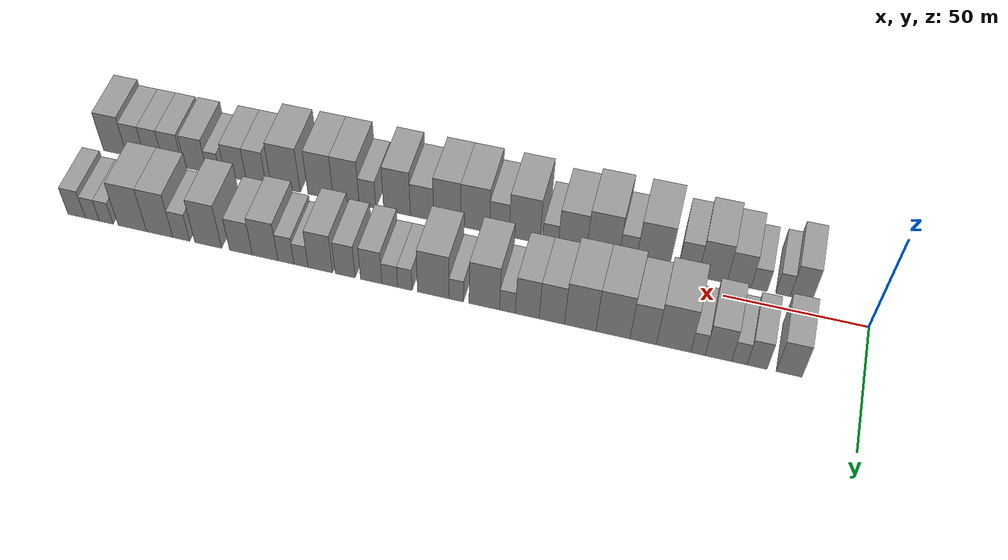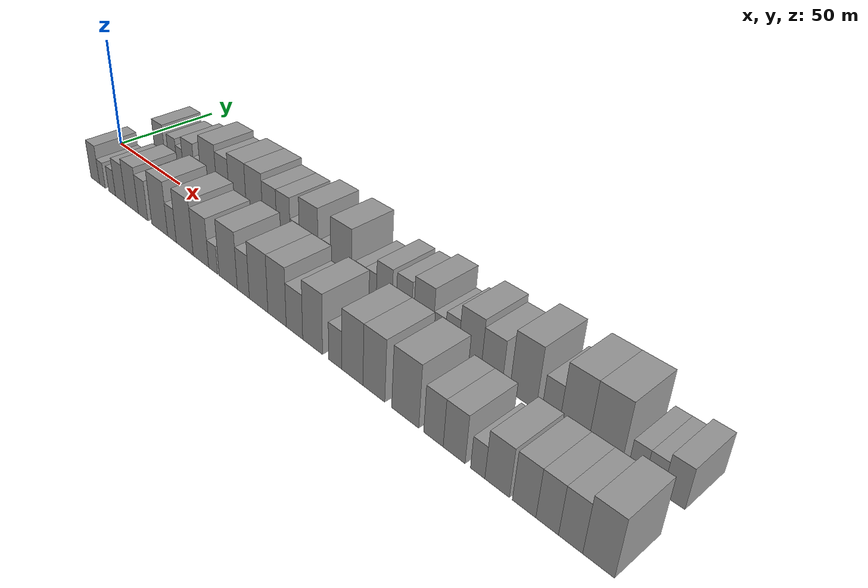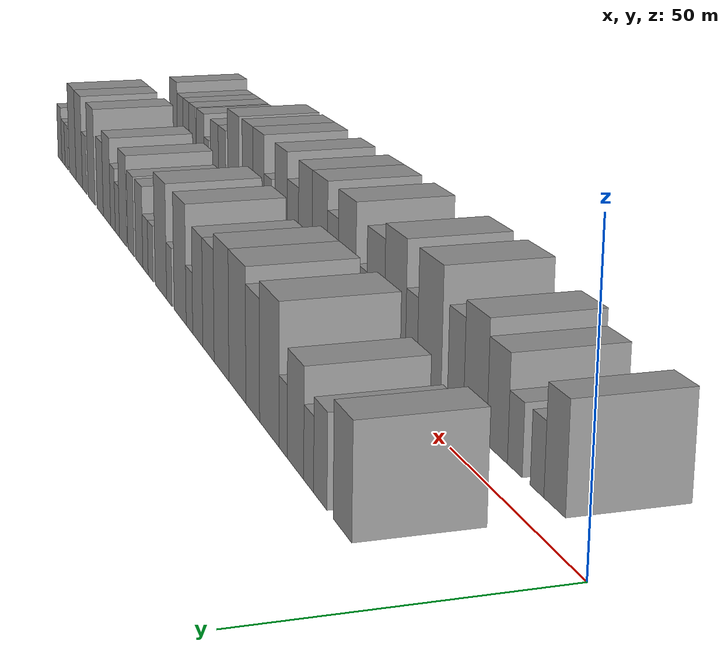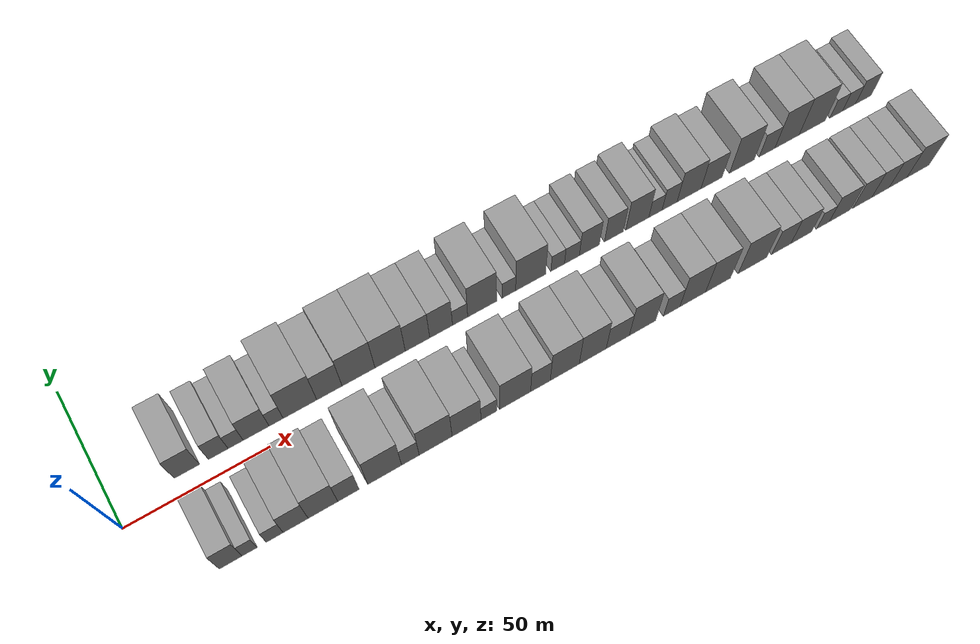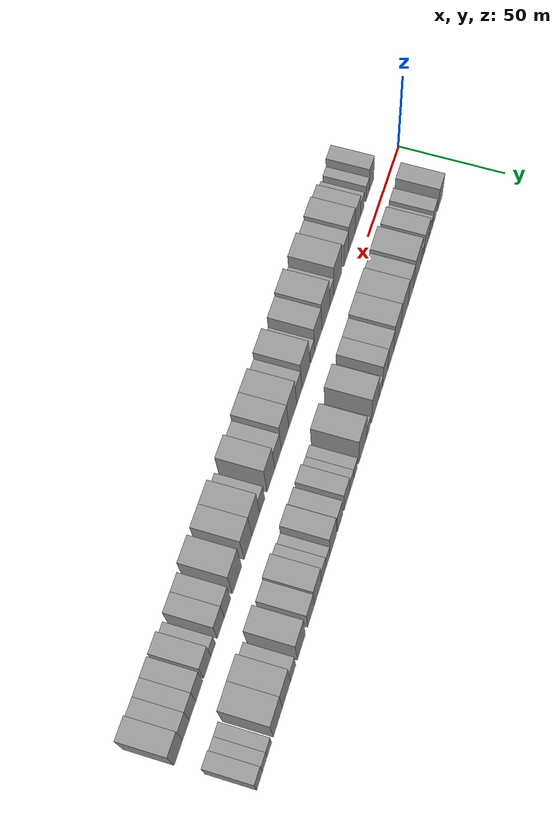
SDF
<sdf version="1.6">
 <world name="default">
  <scene>
   <sky><clouds><speed>12</speed></clouds></sky>
   <ambient>0.4 0.4 0.4 1</ambient>
   <background>0.7 0.7 0.7 1</background>
   <shadows>1</shadows>
  </scene>
  <gravity>0 0 -9.8066</gravity>
  <magnetic_field>6e-06 2.3e-05 -4.2e-05</magnetic_field>
  <physics default="0" name="default_physics" type="ode">
   <ode>
    <solver>
     <type>quick</type>
     <iters>10</iters>
     <sor>1.0</sor>
     <use_dynamic_moi_rescaling>0</use_dynamic_moi_rescaling>
    </solver>
    <constraints>
     <cfm>0</cfm>
     <erp>0.2</erp>
     <contact_max_correcting_vel>100</contact_max_correcting_vel>
     <contact_surface_layer>0.001</contact_surface_layer>
    </constraints>
   </ode>
   <max_step_size>0.004</max_step_size>
   <real_time_factor>1</real_time_factor>
   <real_time_update_rate>250</real_time_update_rate>
  </physics>
  <light name="sun" type="directional">
   <pose>0 0 10 0 0 0</pose>
   <diffuse>0.8 0.8 0.8 1</diffuse>
   <specular>0.2 0.2 0.2 1</specular>
   <attenuation>
    <range>1000</range>
    <constant>0.9</constant>
    <linear>0.01</linear>
    <quadratic>0.001</quadratic>
   </attenuation>
   <direction>-0.5 0.1 -0.9</direction>
  </light>
  <model name="building_1">
   <static>1</static>
   <pose>24.3250 16.0000 0 0.000000 0.000000 1.570796</pose>
   <link name="link">
    <pose>0 0 9.00 0 0 0</pose>
    <collision name="collision"><geometry><box><size>20.0000 8.6500 18.0000</size></box></geometry></collision>
    <visual name="visual">
     <cast_shadows>0</cast_shadows>
     <geometry><box><size>20.0000 8.6500 18.0000</size></box></geometry>
     <material>
      <script>
       <uri>model://grey_wall/materials/scripts</uri>
       <uri>model://grey_wall/materials/textures</uri>
       <name>vrc/grey_wall</name>
      </script>
     </material>
    </visual>
   </link>
  </model>
  <model name="building_2">
   <static>1</static>
   <pose>35.0314 16.0000 0 0.000000 0.000000 1.570796</pose>
   <link name="link">
    <pose>0 0 7.50 0 0 0</pose>
    <collision name="collision"><geometry><box><size>20.0000 6.7627 15.0000</size></box></geometry></collision>
    <visual name="visual">
     <cast_shadows>0</cast_shadows>
     <geometry><box><size>20.0000 6.7627 15.0000</size></box></geometry>
     <material>
      <script>
       <uri>model://grey_wall/materials/scripts</uri>
       <uri>model://grey_wall/materials/textures</uri>
       <name>vrc/grey_wall</name>
      </script>
     </material>
    </visual>
   </link>
  </model>
  <model name="building_3">
   <static>1</static>
   <pose>41.0030 16.0000 0 0.000000 0.000000 1.570796</pose>
   <link name="link">
    <pose>0 0 6.00 0 0 0</pose>
    <collision name="collision"><geometry><box><size>20.0000 5.1804 12.0000</size></box></geometry></collision>
    <visual name="visual">
     <cast_shadows>0</cast_shadows>
     <geometry><box><size>20.0000 5.1804 12.0000</size></box></geometry>
     <material>
      <script>
       <uri>model://grey_wall/materials/scripts</uri>
       <uri>model://grey_wall/materials/textures</uri>
       <name>vrc/grey_wall</name>
      </script>
     </material>
    </visual>
   </link>
  </model>
  <model name="building_4">
   <static>1</static>
   <pose>48.0902 16.0000 0 0.000000 0.000000 1.570796</pose>
   <link name="link">
    <pose>0 0 9.00 0 0 0</pose>
    <collision name="collision"><geometry><box><size>20.0000 8.9939 18.0000</size></box></geometry></collision>
    <visual name="visual">
     <cast_shadows>0</cast_shadows>
     <geometry><box><size>20.0000 8.9939 18.0000</size></box></geometry>
     <material>
      <script>
       <uri>model://grey_wall/materials/scripts</uri>
       <uri>model://grey_wall/materials/textures</uri>
       <name>vrc/grey_wall</name>
      </script>
     </material>
    </visual>
   </link>
  </model>
  <model name="building_5">
   <static>1</static>
   <pose>55.0457 16.0000 0 0.000000 0.000000 1.570796</pose>
   <link name="link">
    <pose>0 0 6.00 0 0 0</pose>
    <collision name="collision"><geometry><box><size>20.0000 4.9170 12.0000</size></box></geometry></collision>
    <visual name="visual">
     <cast_shadows>0</cast_shadows>
     <geometry><box><size>20.0000 4.9170 12.0000</size></box></geometry>
     <material>
      <script>
       <uri>model://grey_wall/materials/scripts</uri>
       <uri>model://grey_wall/materials/textures</uri>
       <name>vrc/grey_wall</name>
      </script>
     </material>
    </visual>
   </link>
  </model>
  <model name="building_6">
   <static>1</static>
   <pose>63.4127 16.0000 0 0.000000 0.000000 1.570796</pose>
   <link name="link">
    <pose>0 0 12.00 0 0 0</pose>
    <collision name="collision"><geometry><box><size>20.0000 11.8170 24.0000</size></box></geometry></collision>
    <visual name="visual">
     <cast_shadows>0</cast_shadows>
     <geometry><box><size>20.0000 11.8170 24.0000</size></box></geometry>
     <material>
      <script>
       <uri>model://grey_wall/materials/scripts</uri>
       <uri>model://grey_wall/materials/textures</uri>
       <name>vrc/grey_wall</name>
      </script>
     </material>
    </visual>
   </link>
  </model>
  <model name="building_7">
   <static>1</static>
   <pose>73.8226 16.0000 0 0.000000 0.000000 1.570796</pose>
   <link name="link">
    <pose>0 0 10.50 0 0 0</pose>
    <collision name="collision"><geometry><box><size>20.0000 9.0029 21.0000</size></box></geometry></collision>
    <visual name="visual">
     <cast_shadows>0</cast_shadows>
     <geometry><box><size>20.0000 9.0029 21.0000</size></box></geometry>
     <material>
      <script>
       <uri>model://grey_wall/materials/scripts</uri>
       <uri>model://grey_wall/materials/textures</uri>
       <name>vrc/grey_wall</name>
      </script>
     </material>
    </visual>
   </link>
  </model>
  <model name="building_8">
   <static>1</static>
   <pose>84.2331 16.0000 0 0.000000 0.000000 1.570796</pose>
   <link name="link">
    <pose>0 0 12.00 0 0 0</pose>
    <collision name="collision"><geometry><box><size>20.0000 11.8181 24.0000</size></box></geometry></collision>
    <visual name="visual">
     <cast_shadows>0</cast_shadows>
     <geometry><box><size>20.0000 11.8181 24.0000</size></box></geometry>
     <material>
      <script>
       <uri>model://grey_wall/materials/scripts</uri>
       <uri>model://grey_wall/materials/textures</uri>
       <name>vrc/grey_wall</name>
      </script>
     </material>
    </visual>
   </link>
  </model>
  <model name="building_9">
   <static>1</static>
   <pose>95.6553 16.0000 0 0.000000 0.000000 1.570796</pose>
   <link name="link">
    <pose>0 0 12.00 0 0 0</pose>
    <collision name="collision"><geometry><box><size>20.0000 11.0262 24.0000</size></box></geometry></collision>
    <visual name="visual">
     <cast_shadows>0</cast_shadows>
     <geometry><box><size>20.0000 11.0262 24.0000</size></box></geometry>
     <material>
      <script>
       <uri>model://grey_wall/materials/scripts</uri>
       <uri>model://grey_wall/materials/textures</uri>
       <name>vrc/grey_wall</name>
      </script>
     </material>
    </visual>
   </link>
  </model>
  <model name="building_10">
   <static>1</static>
   <pose>105.6453 16.0000 0 0.000000 0.000000 1.570796</pose>
   <link name="link">
    <pose>0 0 10.50 0 0 0</pose>
    <collision name="collision"><geometry><box><size>20.0000 8.9538 21.0000</size></box></geometry></collision>
    <visual name="visual">
     <cast_shadows>0</cast_shadows>
     <geometry><box><size>20.0000 8.9538 21.0000</size></box></geometry>
     <material>
      <script>
       <uri>model://grey_wall/materials/scripts</uri>
       <uri>model://grey_wall/materials/textures</uri>
       <name>vrc/grey_wall</name>
      </script>
     </material>
    </visual>
   </link>
  </model>
  <model name="building_11">
   <static>1</static>
   <pose>114.3424 16.0000 0 0.000000 0.000000 1.570796</pose>
   <link name="link">
    <pose>0 0 10.50 0 0 0</pose>
    <collision name="collision"><geometry><box><size>20.0000 8.4403 21.0000</size></box></geometry></collision>
    <visual name="visual">
     <cast_shadows>0</cast_shadows>
     <geometry><box><size>20.0000 8.4403 21.0000</size></box></geometry>
     <material>
      <script>
       <uri>model://grey_wall/materials/scripts</uri>
       <uri>model://grey_wall/materials/textures</uri>
       <name>vrc/grey_wall</name>
      </script>
     </material>
    </visual>
   </link>
  </model>
  <model name="building_12">
   <static>1</static>
   <pose>121.3805 16.0000 0 0.000000 0.000000 1.570796</pose>
   <link name="link">
    <pose>0 0 6.00 0 0 0</pose>
    <collision name="collision"><geometry><box><size>20.0000 5.6361 12.0000</size></box></geometry></collision>
    <visual name="visual">
     <cast_shadows>0</cast_shadows>
     <geometry><box><size>20.0000 5.6361 12.0000</size></box></geometry>
     <material>
      <script>
       <uri>model://grey_wall/materials/scripts</uri>
       <uri>model://grey_wall/materials/textures</uri>
       <name>vrc/grey_wall</name>
      </script>
     </material>
    </visual>
   </link>
  </model>
  <model name="building_13">
   <static>1</static>
   <pose>129.6398 16.0000 0 0.000000 0.000000 1.570796</pose>
   <link name="link">
    <pose>0 0 12.00 0 0 0</pose>
    <collision name="collision"><geometry><box><size>20.0000 10.8824 24.0000</size></box></geometry></collision>
    <visual name="visual">
     <cast_shadows>0</cast_shadows>
     <geometry><box><size>20.0000 10.8824 24.0000</size></box></geometry>
     <material>
      <script>
       <uri>model://grey_wall/materials/scripts</uri>
       <uri>model://grey_wall/materials/textures</uri>
       <name>vrc/grey_wall</name>
      </script>
     </material>
    </visual>
   </link>
  </model>
  <model name="building_14">
   <static>1</static>
   <pose>139.6663 16.0000 0 0.000000 0.000000 1.570796</pose>
   <link name="link">
    <pose>0 0 6.00 0 0 0</pose>
    <collision name="collision"><geometry><box><size>20.0000 5.1708 12.0000</size></box></geometry></collision>
    <visual name="visual">
     <cast_shadows>0</cast_shadows>
     <geometry><box><size>20.0000 5.1708 12.0000</size></box></geometry>
     <material>
      <script>
       <uri>model://grey_wall/materials/scripts</uri>
       <uri>model://grey_wall/materials/textures</uri>
       <name>vrc/grey_wall</name>
      </script>
     </material>
    </visual>
   </link>
  </model>
  <model name="building_15">
   <static>1</static>
   <pose>147.9795 16.0000 0 0.000000 0.000000 1.570796</pose>
   <link name="link">
    <pose>0 0 12.00 0 0 0</pose>
    <collision name="collision"><geometry><box><size>20.0000 11.4556 24.0000</size></box></geometry></collision>
    <visual name="visual">
     <cast_shadows>0</cast_shadows>
     <geometry><box><size>20.0000 11.4556 24.0000</size></box></geometry>
     <material>
      <script>
       <uri>model://grey_wall/materials/scripts</uri>
       <uri>model://grey_wall/materials/textures</uri>
       <name>vrc/grey_wall</name>
      </script>
     </material>
    </visual>
   </link>
  </model>
  <model name="building_16">
   <static>1</static>
   <pose>158.3453 16.0000 0 0.000000 0.000000 1.570796</pose>
   <link name="link">
    <pose>0 0 6.00 0 0 0</pose>
    <collision name="collision"><geometry><box><size>20.0000 5.2759 12.0000</size></box></geometry></collision>
    <visual name="visual">
     <cast_shadows>0</cast_shadows>
     <geometry><box><size>20.0000 5.2759 12.0000</size></box></geometry>
     <material>
      <script>
       <uri>model://grey_wall/materials/scripts</uri>
       <uri>model://grey_wall/materials/textures</uri>
       <name>vrc/grey_wall</name>
      </script>
     </material>
    </visual>
   </link>
  </model>
  <model name="building_17">
   <static>1</static>
   <pose>163.8583 16.0000 0 0.000000 0.000000 1.570796</pose>
   <link name="link">
    <pose>0 0 6.00 0 0 0</pose>
    <collision name="collision"><geometry><box><size>20.0000 5.7501 12.0000</size></box></geometry></collision>
    <visual name="visual">
     <cast_shadows>0</cast_shadows>
     <geometry><box><size>20.0000 5.7501 12.0000</size></box></geometry>
     <material>
      <script>
       <uri>model://grey_wall/materials/scripts</uri>
       <uri>model://grey_wall/materials/textures</uri>
       <name>vrc/grey_wall</name>
      </script>
     </material>
    </visual>
   </link>
  </model>
  <model name="building_18">
   <static>1</static>
   <pose>170.6636 16.0000 0 0.000000 0.000000 1.570796</pose>
   <link name="link">
    <pose>0 0 9.00 0 0 0</pose>
    <collision name="collision"><geometry><box><size>20.0000 7.8605 18.0000</size></box></geometry></collision>
    <visual name="visual">
     <cast_shadows>0</cast_shadows>
     <geometry><box><size>20.0000 7.8605 18.0000</size></box></geometry>
     <material>
      <script>
       <uri>model://grey_wall/materials/scripts</uri>
       <uri>model://grey_wall/materials/textures</uri>
       <name>vrc/grey_wall</name>
      </script>
     </material>
    </visual>
   </link>
  </model>
  <model name="building_19">
   <static>1</static>
   <pose>180.2828 16.0000 0 0.000000 0.000000 1.570796</pose>
   <link name="link">
    <pose>0 0 9.00 0 0 0</pose>
    <collision name="collision"><geometry><box><size>20.0000 7.3778 18.0000</size></box></geometry></collision>
    <visual name="visual">
     <cast_shadows>0</cast_shadows>
     <geometry><box><size>20.0000 7.3778 18.0000</size></box></geometry>
     <material>
      <script>
       <uri>model://grey_wall/materials/scripts</uri>
       <uri>model://grey_wall/materials/textures</uri>
       <name>vrc/grey_wall</name>
      </script>
     </material>
    </visual>
   </link>
  </model>
  <model name="building_20">
   <static>1</static>
   <pose>189.5347 16.0000 0 0.000000 0.000000 1.570796</pose>
   <link name="link">
    <pose>0 0 10.50 0 0 0</pose>
    <collision name="collision"><geometry><box><size>20.0000 9.1259 21.0000</size></box></geometry></collision>
    <visual name="visual">
     <cast_shadows>0</cast_shadows>
     <geometry><box><size>20.0000 9.1259 21.0000</size></box></geometry>
     <material>
      <script>
       <uri>model://grey_wall/materials/scripts</uri>
       <uri>model://grey_wall/materials/textures</uri>
       <name>vrc/grey_wall</name>
      </script>
     </material>
    </visual>
   </link>
  </model>
  <model name="building_21">
   <static>1</static>
   <pose>196.7513 16.0000 0 0.000000 0.000000 1.570796</pose>
   <link name="link">
    <pose>0 0 6.00 0 0 0</pose>
    <collision name="collision"><geometry><box><size>20.0000 5.3074 12.0000</size></box></geometry></collision>
    <visual name="visual">
     <cast_shadows>0</cast_shadows>
     <geometry><box><size>20.0000 5.3074 12.0000</size></box></geometry>
     <material>
      <script>
       <uri>model://grey_wall/materials/scripts</uri>
       <uri>model://grey_wall/materials/textures</uri>
       <name>vrc/grey_wall</name>
      </script>
     </material>
    </visual>
   </link>
  </model>
  <model name="building_22">
   <static>1</static>
   <pose>202.4289 16.0000 0 0.000000 0.000000 1.570796</pose>
   <link name="link">
    <pose>0 0 7.50 0 0 0</pose>
    <collision name="collision"><geometry><box><size>20.0000 6.0478 15.0000</size></box></geometry></collision>
    <visual name="visual">
     <cast_shadows>0</cast_shadows>
     <geometry><box><size>20.0000 6.0478 15.0000</size></box></geometry>
     <material>
      <script>
       <uri>model://grey_wall/materials/scripts</uri>
       <uri>model://grey_wall/materials/textures</uri>
       <name>vrc/grey_wall</name>
      </script>
     </material>
    </visual>
   </link>
  </model>
  <model name="building_23">
   <static>1</static>
   <pose>210.3044 16.0000 0 0.000000 0.000000 1.570796</pose>
   <link name="link">
    <pose>0 0 10.50 0 0 0</pose>
    <collision name="collision"><geometry><box><size>20.0000 9.7033 21.0000</size></box></geometry></collision>
    <visual name="visual">
     <cast_shadows>0</cast_shadows>
     <geometry><box><size>20.0000 9.7033 21.0000</size></box></geometry>
     <material>
      <script>
       <uri>model://grey_wall/materials/scripts</uri>
       <uri>model://grey_wall/materials/textures</uri>
       <name>vrc/grey_wall</name>
      </script>
     </material>
    </visual>
   </link>
  </model>
  <model name="building_24">
   <static>1</static>
   <pose>219.4994 16.0000 0 0.000000 0.000000 1.570796</pose>
   <link name="link">
    <pose>0 0 9.00 0 0 0</pose>
    <collision name="collision"><geometry><box><size>20.0000 8.6868 18.0000</size></box></geometry></collision>
    <visual name="visual">
     <cast_shadows>0</cast_shadows>
     <geometry><box><size>20.0000 8.6868 18.0000</size></box></geometry>
     <material>
      <script>
       <uri>model://grey_wall/materials/scripts</uri>
       <uri>model://grey_wall/materials/textures</uri>
       <name>vrc/grey_wall</name>
      </script>
     </material>
    </visual>
   </link>
  </model>
  <model name="building_25">
   <static>1</static>
   <pose>231.9892 16.0000 0 0.000000 0.000000 1.570796</pose>
   <link name="link">
    <pose>0 0 12.00 0 0 0</pose>
    <collision name="collision"><geometry><box><size>20.0000 10.2928 24.0000</size></box></geometry></collision>
    <visual name="visual">
     <cast_shadows>0</cast_shadows>
     <geometry><box><size>20.0000 10.2928 24.0000</size></box></geometry>
     <material>
      <script>
       <uri>model://grey_wall/materials/scripts</uri>
       <uri>model://grey_wall/materials/textures</uri>
       <name>vrc/grey_wall</name>
      </script>
     </material>
    </visual>
   </link>
  </model>
  <model name="building_26">
   <static>1</static>
   <pose>242.4073 16.0000 0 0.000000 0.000000 1.570796</pose>
   <link name="link">
    <pose>0 0 7.50 0 0 0</pose>
    <collision name="collision"><geometry><box><size>20.0000 6.5432 15.0000</size></box></geometry></collision>
    <visual name="visual">
     <cast_shadows>0</cast_shadows>
     <geometry><box><size>20.0000 6.5432 15.0000</size></box></geometry>
     <material>
      <script>
       <uri>model://grey_wall/materials/scripts</uri>
       <uri>model://grey_wall/materials/textures</uri>
       <name>vrc/grey_wall</name>
      </script>
     </material>
    </visual>
   </link>
  </model>
  <model name="building_27">
   <static>1</static>
   <pose>250.7793 16.0000 0 0.000000 0.000000 1.570796</pose>
   <link name="link">
    <pose>0 0 12.00 0 0 0</pose>
    <collision name="collision"><geometry><box><size>20.0000 10.2008 24.0000</size></box></geometry></collision>
    <visual name="visual">
     <cast_shadows>0</cast_shadows>
     <geometry><box><size>20.0000 10.2008 24.0000</size></box></geometry>
     <material>
      <script>
       <uri>model://grey_wall/materials/scripts</uri>
       <uri>model://grey_wall/materials/textures</uri>
       <name>vrc/grey_wall</name>
      </script>
     </material>
    </visual>
   </link>
  </model>
  <model name="building_28">
   <static>1</static>
   <pose>261.4394 16.0000 0 0.000000 0.000000 1.570796</pose>
   <link name="link">
    <pose>0 0 12.00 0 0 0</pose>
    <collision name="collision"><geometry><box><size>20.0000 11.1194 24.0000</size></box></geometry></collision>
    <visual name="visual">
     <cast_shadows>0</cast_shadows>
     <geometry><box><size>20.0000 11.1194 24.0000</size></box></geometry>
     <material>
      <script>
       <uri>model://grey_wall/materials/scripts</uri>
       <uri>model://grey_wall/materials/textures</uri>
       <name>vrc/grey_wall</name>
      </script>
     </material>
    </visual>
   </link>
  </model>
  <model name="building_29">
   <static>1</static>
   <pose>271.7174 16.0000 0 0.000000 0.000000 1.570796</pose>
   <link name="link">
    <pose>0 0 6.00 0 0 0</pose>
    <collision name="collision"><geometry><box><size>20.0000 5.4367 12.0000</size></box></geometry></collision>
    <visual name="visual">
     <cast_shadows>0</cast_shadows>
     <geometry><box><size>20.0000 5.4367 12.0000</size></box></geometry>
     <material>
      <script>
       <uri>model://grey_wall/materials/scripts</uri>
       <uri>model://grey_wall/materials/textures</uri>
       <name>vrc/grey_wall</name>
      </script>
     </material>
    </visual>
   </link>
  </model>
  <model name="building_30">
   <static>1</static>
   <pose>277.2070 16.0000 0 0.000000 0.000000 1.570796</pose>
   <link name="link">
    <pose>0 0 6.00 0 0 0</pose>
    <collision name="collision"><geometry><box><size>20.0000 5.5424 12.0000</size></box></geometry></collision>
    <visual name="visual">
     <cast_shadows>0</cast_shadows>
     <geometry><box><size>20.0000 5.5424 12.0000</size></box></geometry>
     <material>
      <script>
       <uri>model://grey_wall/materials/scripts</uri>
       <uri>model://grey_wall/materials/textures</uri>
       <name>vrc/grey_wall</name>
      </script>
     </material>
    </visual>
   </link>
  </model>
  <model name="building_31">
   <static>1</static>
   <pose>283.4098 16.0000 0 0.000000 0.000000 1.570796</pose>
   <link name="link">
    <pose>0 0 7.50 0 0 0</pose>
    <collision name="collision"><geometry><box><size>20.0000 6.8633 15.0000</size></box></geometry></collision>
    <visual name="visual">
     <cast_shadows>0</cast_shadows>
     <geometry><box><size>20.0000 6.8633 15.0000</size></box></geometry>
     <material>
      <script>
       <uri>model://grey_wall/materials/scripts</uri>
       <uri>model://grey_wall/materials/textures</uri>
       <name>vrc/grey_wall</name>
      </script>
     </material>
    </visual>
   </link>
  </model>
  <model name="building_32">
   <static>1</static>
   <pose>23.7918 -16.0000 0 0.000000 0.000000 1.570796</pose>
   <link name="link">
    <pose>0 0 9.00 0 0 0</pose>
    <collision name="collision"><geometry><box><size>20.0000 7.5835 18.0000</size></box></geometry></collision>
    <visual name="visual">
     <cast_shadows>0</cast_shadows>
     <geometry><box><size>20.0000 7.5835 18.0000</size></box></geometry>
     <material>
      <script>
       <uri>model://grey_wall/materials/scripts</uri>
       <uri>model://grey_wall/materials/textures</uri>
       <name>vrc/grey_wall</name>
      </script>
     </material>
    </visual>
   </link>
  </model>
  <model name="building_33">
   <static>1</static>
   <pose>30.0949 -16.0000 0 0.000000 0.000000 1.570796</pose>
   <link name="link">
    <pose>0 0 6.00 0 0 0</pose>
    <collision name="collision"><geometry><box><size>20.0000 5.0228 12.0000</size></box></geometry></collision>
    <visual name="visual">
     <cast_shadows>0</cast_shadows>
     <geometry><box><size>20.0000 5.0228 12.0000</size></box></geometry>
     <material>
      <script>
       <uri>model://grey_wall/materials/scripts</uri>
       <uri>model://grey_wall/materials/textures</uri>
       <name>vrc/grey_wall</name>
      </script>
     </material>
    </visual>
   </link>
  </model>
  <model name="building_34">
   <static>1</static>
   <pose>38.4783 -16.0000 0 0.000000 0.000000 1.570796</pose>
   <link name="link">
    <pose>0 0 6.00 0 0 0</pose>
    <collision name="collision"><geometry><box><size>20.0000 5.7441 12.0000</size></box></geometry></collision>
    <visual name="visual">
     <cast_shadows>0</cast_shadows>
     <geometry><box><size>20.0000 5.7441 12.0000</size></box></geometry>
     <material>
      <script>
       <uri>model://grey_wall/materials/scripts</uri>
       <uri>model://grey_wall/materials/textures</uri>
       <name>vrc/grey_wall</name>
      </script>
     </material>
    </visual>
   </link>
  </model>
  <model name="building_35">
   <static>1</static>
   <pose>45.5923 -16.0000 0 0.000000 0.000000 1.570796</pose>
   <link name="link">
    <pose>0 0 9.00 0 0 0</pose>
    <collision name="collision"><geometry><box><size>20.0000 8.4839 18.0000</size></box></geometry></collision>
    <visual name="visual">
     <cast_shadows>0</cast_shadows>
     <geometry><box><size>20.0000 8.4839 18.0000</size></box></geometry>
     <material>
      <script>
       <uri>model://grey_wall/materials/scripts</uri>
       <uri>model://grey_wall/materials/textures</uri>
       <name>vrc/grey_wall</name>
      </script>
     </material>
    </visual>
   </link>
  </model>
  <model name="building_36">
   <static>1</static>
   <pose>54.9042 -16.0000 0 0.000000 0.000000 1.570796</pose>
   <link name="link">
    <pose>0 0 10.50 0 0 0</pose>
    <collision name="collision"><geometry><box><size>20.0000 10.1398 21.0000</size></box></geometry></collision>
    <visual name="visual">
     <cast_shadows>0</cast_shadows>
     <geometry><box><size>20.0000 10.1398 21.0000</size></box></geometry>
     <material>
      <script>
       <uri>model://grey_wall/materials/scripts</uri>
       <uri>model://grey_wall/materials/textures</uri>
       <name>vrc/grey_wall</name>
      </script>
     </material>
    </visual>
   </link>
  </model>
  <model name="building_37">
   <static>1</static>
   <pose>63.6583 -16.0000 0 0.000000 0.000000 1.570796</pose>
   <link name="link">
    <pose>0 0 9.00 0 0 0</pose>
    <collision name="collision"><geometry><box><size>20.0000 7.3685 18.0000</size></box></geometry></collision>
    <visual name="visual">
     <cast_shadows>0</cast_shadows>
     <geometry><box><size>20.0000 7.3685 18.0000</size></box></geometry>
     <material>
      <script>
       <uri>model://grey_wall/materials/scripts</uri>
       <uri>model://grey_wall/materials/textures</uri>
       <name>vrc/grey_wall</name>
      </script>
     </material>
    </visual>
   </link>
  </model>
  <model name="building_38">
   <static>1</static>
   <pose>76.2616 -16.0000 0 0.000000 0.000000 1.570796</pose>
   <link name="link">
    <pose>0 0 12.00 0 0 0</pose>
    <collision name="collision"><geometry><box><size>20.0000 11.8380 24.0000</size></box></geometry></collision>
    <visual name="visual">
     <cast_shadows>0</cast_shadows>
     <geometry><box><size>20.0000 11.8380 24.0000</size></box></geometry>
     <material>
      <script>
       <uri>model://grey_wall/materials/scripts</uri>
       <uri>model://grey_wall/materials/textures</uri>
       <name>vrc/grey_wall</name>
      </script>
     </material>
    </visual>
   </link>
  </model>
  <model name="building_39">
   <static>1</static>
   <pose>85.2877 -16.0000 0 0.000000 0.000000 1.570796</pose>
   <link name="link">
    <pose>0 0 7.50 0 0 0</pose>
    <collision name="collision"><geometry><box><size>20.0000 6.2142 15.0000</size></box></geometry></collision>
    <visual name="visual">
     <cast_shadows>0</cast_shadows>
     <geometry><box><size>20.0000 6.2142 15.0000</size></box></geometry>
     <material>
      <script>
       <uri>model://grey_wall/materials/scripts</uri>
       <uri>model://grey_wall/materials/textures</uri>
       <name>vrc/grey_wall</name>
      </script>
     </material>
    </visual>
   </link>
  </model>
  <model name="building_40">
   <static>1</static>
   <pose>94.2664 -16.0000 0 0.000000 0.000000 1.570796</pose>
   <link name="link">
    <pose>0 0 12.00 0 0 0</pose>
    <collision name="collision"><geometry><box><size>20.0000 11.7433 24.0000</size></box></geometry></collision>
    <visual name="visual">
     <cast_shadows>0</cast_shadows>
     <geometry><box><size>20.0000 11.7433 24.0000</size></box></geometry>
     <material>
      <script>
       <uri>model://grey_wall/materials/scripts</uri>
       <uri>model://grey_wall/materials/textures</uri>
       <name>vrc/grey_wall</name>
      </script>
     </material>
    </visual>
   </link>
  </model>
  <model name="building_41">
   <static>1</static>
   <pose>105.3357 -16.0000 0 0.000000 0.000000 1.570796</pose>
   <link name="link">
    <pose>0 0 10.50 0 0 0</pose>
    <collision name="collision"><geometry><box><size>20.0000 10.3953 21.0000</size></box></geometry></collision>
    <visual name="visual">
     <cast_shadows>0</cast_shadows>
     <geometry><box><size>20.0000 10.3953 21.0000</size></box></geometry>
     <material>
      <script>
       <uri>model://grey_wall/materials/scripts</uri>
       <uri>model://grey_wall/materials/textures</uri>
       <name>vrc/grey_wall</name>
      </script>
     </material>
    </visual>
   </link>
  </model>
  <model name="building_42">
   <static>1</static>
   <pose>113.4114 -16.0000 0 0.000000 0.000000 1.570796</pose>
   <link name="link">
    <pose>0 0 6.00 0 0 0</pose>
    <collision name="collision"><geometry><box><size>20.0000 5.7562 12.0000</size></box></geometry></collision>
    <visual name="visual">
     <cast_shadows>0</cast_shadows>
     <geometry><box><size>20.0000 5.7562 12.0000</size></box></geometry>
     <material>
      <script>
       <uri>model://grey_wall/materials/scripts</uri>
       <uri>model://grey_wall/materials/textures</uri>
       <name>vrc/grey_wall</name>
      </script>
     </material>
    </visual>
   </link>
  </model>
  <model name="building_43">
   <static>1</static>
   <pose>122.9722 -16.0000 0 0.000000 0.000000 1.570796</pose>
   <link name="link">
    <pose>0 0 12.00 0 0 0</pose>
    <collision name="collision"><geometry><box><size>20.0000 11.3655 24.0000</size></box></geometry></collision>
    <visual name="visual">
     <cast_shadows>0</cast_shadows>
     <geometry><box><size>20.0000 11.3655 24.0000</size></box></geometry>
     <material>
      <script>
       <uri>model://grey_wall/materials/scripts</uri>
       <uri>model://grey_wall/materials/textures</uri>
       <name>vrc/grey_wall</name>
      </script>
     </material>
    </visual>
   </link>
  </model>
  <model name="building_44">
   <static>1</static>
   <pose>132.2848 -16.0000 0 0.000000 0.000000 1.570796</pose>
   <link name="link">
    <pose>0 0 9.00 0 0 0</pose>
    <collision name="collision"><geometry><box><size>20.0000 7.2596 18.0000</size></box></geometry></collision>
    <visual name="visual">
     <cast_shadows>0</cast_shadows>
     <geometry><box><size>20.0000 7.2596 18.0000</size></box></geometry>
     <material>
      <script>
       <uri>model://grey_wall/materials/scripts</uri>
       <uri>model://grey_wall/materials/textures</uri>
       <name>vrc/grey_wall</name>
      </script>
     </material>
    </visual>
   </link>
  </model>
  <model name="building_45">
   <static>1</static>
   <pose>141.3230 -16.0000 0 0.000000 0.000000 1.570796</pose>
   <link name="link">
    <pose>0 0 12.00 0 0 0</pose>
    <collision name="collision"><geometry><box><size>20.0000 10.8169 24.0000</size></box></geometry></collision>
    <visual name="visual">
     <cast_shadows>0</cast_shadows>
     <geometry><box><size>20.0000 10.8169 24.0000</size></box></geometry>
     <material>
      <script>
       <uri>model://grey_wall/materials/scripts</uri>
       <uri>model://grey_wall/materials/textures</uri>
       <name>vrc/grey_wall</name>
      </script>
     </material>
    </visual>
   </link>
  </model>
  <model name="building_46">
   <static>1</static>
   <pose>151.8254 -16.0000 0 0.000000 0.000000 1.570796</pose>
   <link name="link">
    <pose>0 0 12.00 0 0 0</pose>
    <collision name="collision"><geometry><box><size>20.0000 10.1878 24.0000</size></box></geometry></collision>
    <visual name="visual">
     <cast_shadows>0</cast_shadows>
     <geometry><box><size>20.0000 10.1878 24.0000</size></box></geometry>
     <material>
      <script>
       <uri>model://grey_wall/materials/scripts</uri>
       <uri>model://grey_wall/materials/textures</uri>
       <name>vrc/grey_wall</name>
      </script>
     </material>
    </visual>
   </link>
  </model>
  <model name="building_47">
   <static>1</static>
   <pose>161.3143 -16.0000 0 0.000000 0.000000 1.570796</pose>
   <link name="link">
    <pose>0 0 9.00 0 0 0</pose>
    <collision name="collision"><geometry><box><size>20.0000 8.7901 18.0000</size></box></geometry></collision>
    <visual name="visual">
     <cast_shadows>0</cast_shadows>
     <geometry><box><size>20.0000 8.7901 18.0000</size></box></geometry>
     <material>
      <script>
       <uri>model://grey_wall/materials/scripts</uri>
       <uri>model://grey_wall/materials/textures</uri>
       <name>vrc/grey_wall</name>
      </script>
     </material>
    </visual>
   </link>
  </model>
  <model name="building_48">
   <static>1</static>
   <pose>170.7829 -16.0000 0 0.000000 0.000000 1.570796</pose>
   <link name="link">
    <pose>0 0 12.00 0 0 0</pose>
    <collision name="collision"><geometry><box><size>20.0000 10.1469 24.0000</size></box></geometry></collision>
    <visual name="visual">
     <cast_shadows>0</cast_shadows>
     <geometry><box><size>20.0000 10.1469 24.0000</size></box></geometry>
     <material>
      <script>
       <uri>model://grey_wall/materials/scripts</uri>
       <uri>model://grey_wall/materials/textures</uri>
       <name>vrc/grey_wall</name>
      </script>
     </material>
    </visual>
   </link>
  </model>
  <model name="building_49">
   <static>1</static>
   <pose>182.0384 -16.0000 0 0.000000 0.000000 1.570796</pose>
   <link name="link">
    <pose>0 0 7.50 0 0 0</pose>
    <collision name="collision"><geometry><box><size>20.0000 6.3642 15.0000</size></box></geometry></collision>
    <visual name="visual">
     <cast_shadows>0</cast_shadows>
     <geometry><box><size>20.0000 6.3642 15.0000</size></box></geometry>
     <material>
      <script>
       <uri>model://grey_wall/materials/scripts</uri>
       <uri>model://grey_wall/materials/textures</uri>
       <name>vrc/grey_wall</name>
      </script>
     </material>
    </visual>
   </link>
  </model>
  <model name="building_50">
   <static>1</static>
   <pose>190.2656 -16.0000 0 0.000000 0.000000 1.570796</pose>
   <link name="link">
    <pose>0 0 12.00 0 0 0</pose>
    <collision name="collision"><geometry><box><size>20.0000 10.0901 24.0000</size></box></geometry></collision>
    <visual name="visual">
     <cast_shadows>0</cast_shadows>
     <geometry><box><size>20.0000 10.0901 24.0000</size></box></geometry>
     <material>
      <script>
       <uri>model://grey_wall/materials/scripts</uri>
       <uri>model://grey_wall/materials/textures</uri>
       <name>vrc/grey_wall</name>
      </script>
     </material>
    </visual>
   </link>
  </model>
  <model name="building_51">
   <static>1</static>
   <pose>200.2509 -16.0000 0 0.000000 0.000000 1.570796</pose>
   <link name="link">
    <pose>0 0 12.00 0 0 0</pose>
    <collision name="collision"><geometry><box><size>20.0000 9.8806 24.0000</size></box></geometry></collision>
    <visual name="visual">
     <cast_shadows>0</cast_shadows>
     <geometry><box><size>20.0000 9.8806 24.0000</size></box></geometry>
     <material>
      <script>
       <uri>model://grey_wall/materials/scripts</uri>
       <uri>model://grey_wall/materials/textures</uri>
       <name>vrc/grey_wall</name>
      </script>
     </material>
    </visual>
   </link>
  </model>
  <model name="building_52">
   <static>1</static>
   <pose>213.9284 -16.0000 0 0.000000 0.000000 1.570796</pose>
   <link name="link">
    <pose>0 0 12.00 0 0 0</pose>
    <collision name="collision"><geometry><box><size>20.0000 11.4744 24.0000</size></box></geometry></collision>
    <visual name="visual">
     <cast_shadows>0</cast_shadows>
     <geometry><box><size>20.0000 11.4744 24.0000</size></box></geometry>
     <material>
      <script>
       <uri>model://grey_wall/materials/scripts</uri>
       <uri>model://grey_wall/materials/textures</uri>
       <name>vrc/grey_wall</name>
      </script>
     </material>
    </visual>
   </link>
  </model>
  <model name="building_53">
   <static>1</static>
   <pose>225.5654 -16.0000 0 0.000000 0.000000 1.570796</pose>
   <link name="link">
    <pose>0 0 9.00 0 0 0</pose>
    <collision name="collision"><geometry><box><size>20.0000 7.7996 18.0000</size></box></geometry></collision>
    <visual name="visual">
     <cast_shadows>0</cast_shadows>
     <geometry><box><size>20.0000 7.7996 18.0000</size></box></geometry>
     <material>
      <script>
       <uri>model://grey_wall/materials/scripts</uri>
       <uri>model://grey_wall/materials/textures</uri>
       <name>vrc/grey_wall</name>
      </script>
     </material>
    </visual>
   </link>
  </model>
  <model name="building_54">
   <static>1</static>
   <pose>233.6869 -16.0000 0 0.000000 0.000000 1.570796</pose>
   <link name="link">
    <pose>0 0 9.00 0 0 0</pose>
    <collision name="collision"><geometry><box><size>20.0000 8.4433 18.0000</size></box></geometry></collision>
    <visual name="visual">
     <cast_shadows>0</cast_shadows>
     <geometry><box><size>20.0000 8.4433 18.0000</size></box></geometry>
     <material>
      <script>
       <uri>model://grey_wall/materials/scripts</uri>
       <uri>model://grey_wall/materials/textures</uri>
       <name>vrc/grey_wall</name>
      </script>
     </material>
    </visual>
   </link>
  </model>
  <model name="building_55">
   <static>1</static>
   <pose>242.5419 -16.0000 0 0.000000 0.000000 1.570796</pose>
   <link name="link">
    <pose>0 0 6.00 0 0 0</pose>
    <collision name="collision"><geometry><box><size>20.0000 5.2669 12.0000</size></box></geometry></collision>
    <visual name="visual">
     <cast_shadows>0</cast_shadows>
     <geometry><box><size>20.0000 5.2669 12.0000</size></box></geometry>
     <material>
      <script>
       <uri>model://grey_wall/materials/scripts</uri>
       <uri>model://grey_wall/materials/textures</uri>
       <name>vrc/grey_wall</name>
      </script>
     </material>
    </visual>
   </link>
  </model>
  <model name="building_56">
   <static>1</static>
   <pose>249.5350 -16.0000 0 0.000000 0.000000 1.570796</pose>
   <link name="link">
    <pose>0 0 9.00 0 0 0</pose>
    <collision name="collision"><geometry><box><size>20.0000 8.7193 18.0000</size></box></geometry></collision>
    <visual name="visual">
     <cast_shadows>0</cast_shadows>
     <geometry><box><size>20.0000 8.7193 18.0000</size></box></geometry>
     <material>
      <script>
       <uri>model://grey_wall/materials/scripts</uri>
       <uri>model://grey_wall/materials/textures</uri>
       <name>vrc/grey_wall</name>
      </script>
     </material>
    </visual>
   </link>
  </model>
  <model name="building_57">
   <static>1</static>
   <pose>258.8688 -16.0000 0 0.000000 0.000000 1.570796</pose>
   <link name="link">
    <pose>0 0 9.00 0 0 0</pose>
    <collision name="collision"><geometry><box><size>20.0000 7.9484 18.0000</size></box></geometry></collision>
    <visual name="visual">
     <cast_shadows>0</cast_shadows>
     <geometry><box><size>20.0000 7.9484 18.0000</size></box></geometry>
     <material>
      <script>
       <uri>model://grey_wall/materials/scripts</uri>
       <uri>model://grey_wall/materials/textures</uri>
       <name>vrc/grey_wall</name>
      </script>
     </material>
    </visual>
   </link>
  </model>
  <model name="building_58">
   <static>1</static>
   <pose>266.5032 -16.0000 0 0.000000 0.000000 1.570796</pose>
   <link name="link">
    <pose>0 0 9.00 0 0 0</pose>
    <collision name="collision"><geometry><box><size>20.0000 7.3204 18.0000</size></box></geometry></collision>
    <visual name="visual">
     <cast_shadows>0</cast_shadows>
     <geometry><box><size>20.0000 7.3204 18.0000</size></box></geometry>
     <material>
      <script>
       <uri>model://grey_wall/materials/scripts</uri>
       <uri>model://grey_wall/materials/textures</uri>
       <name>vrc/grey_wall</name>
      </script>
     </material>
    </visual>
   </link>
  </model>
  <model name="building_59">
   <static>1</static>
   <pose>273.9267 -16.0000 0 0.000000 0.000000 1.570796</pose>
   <link name="link">
    <pose>0 0 9.00 0 0 0</pose>
    <collision name="collision"><geometry><box><size>20.0000 7.5265 18.0000</size></box></geometry></collision>
    <visual name="visual">
     <cast_shadows>0</cast_shadows>
     <geometry><box><size>20.0000 7.5265 18.0000</size></box></geometry>
     <material>
      <script>
       <uri>model://grey_wall/materials/scripts</uri>
       <uri>model://grey_wall/materials/textures</uri>
       <name>vrc/grey_wall</name>
      </script>
     </material>
    </visual>
   </link>
  </model>
  <model name="building_60">
   <static>1</static>
   <pose>282.4347 -16.0000 0 0.000000 0.000000 1.570796</pose>
   <link name="link">
    <pose>0 0 10.50 0 0 0</pose>
    <collision name="collision"><geometry><box><size>20.0000 9.4894 21.0000</size></box></geometry></collision>
    <visual name="visual">
     <cast_shadows>0</cast_shadows>
     <geometry><box><size>20.0000 9.4894 21.0000</size></box></geometry>
     <material>
      <script>
       <uri>model://grey_wall/materials/scripts</uri>
       <uri>model://grey_wall/materials/textures</uri>
       <name>vrc/grey_wall</name>
      </script>
     </material>
    </visual>
   </link>
  </model>
 </world>
</sdf>
